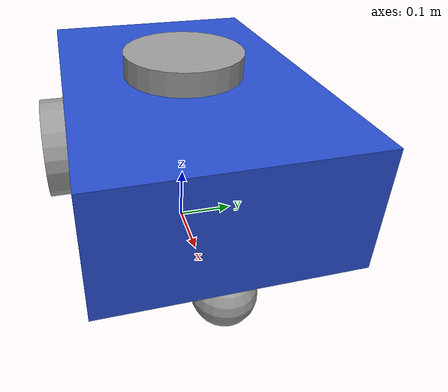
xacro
<?xml version="1.0"?>
<robot name="usenav" xmlns:xacro="http://www.ros.org/wiki/xacro">

  <xacro:property name="BASE_LENGTH" value="0.6" />
  <xacro:property name="BASE_WIDTH" value="0.4" />
  <xacro:property name="BASE_HEIGHT" value="0.2" />

  <xacro:property name="WHEEL_RADIUS" value="0.1" />
  <xacro:property name="WHEEL_LENGTH" value="0.05" />

  <xacro:property name="SCAN_RADIUS" value="0.1" />
  <xacro:property name="SCAN_LENGTH" value="0.04" />

  <xacro:property name="BASE_MASS" value="5.0" />
  <xacro:property name="WHEEL_MASS" value="1.0" />
  <xacro:property name="CASTER_MASS" value="0.5" />
  <xacro:property name="SCAN_MASS" value="0.2" />

  <xacro:macro name="wheel" params="name y_sign">
    <link name="${name}_wheel">
      <visual>
        <geometry>
          <cylinder radius="${WHEEL_RADIUS}" length="${WHEEL_LENGTH}" />
        </geometry>
        <origin xyz="0.0 0.0 0.0" rpy="0.0 0.0 0.0" />
        <material name="grey" />
      </visual>

      <collision>
        <geometry>
          <cylinder radius="${WHEEL_RADIUS}" length="${WHEEL_LENGTH}" />
        </geometry>
        <origin xyz="0.0 0.0 0.0" rpy="0.0 0.0 0.0" />
      </collision>

      <xacro:cylinder_inertia m="${WHEEL_MASS}" r="${INERTIA_MULTIPLY * WHEEL_RADIUS}"
        h="${INERTIA_MULTIPLY * WHEEL_LENGTH}"
        xyz="0.0 0.0 0.0" rpy="0.0 0.0 0.0" />

    </link>

    <joint name="${name}_joint" type="continuous">
      <parent link="base_link" />
      <child link="${name}_wheel" />
      <origin xyz="${-BASE_LENGTH/4} ${y_sign*(BASE_WIDTH + WHEEL_LENGTH) / 2.0} 0.0"
        rpy="${-pi/2.0} 0 0" />
      <axis xyz="0 0 1" />
    </joint>
  </xacro:macro>

  <link name="base_footprint" />

  <link name="base_link">
    <visual>
      <geometry>
        <box size="${BASE_LENGTH} ${BASE_WIDTH} ${BASE_HEIGHT} " />
      </geometry>
      <origin xyz="0 0 ${BASE_HEIGHT/2.0}" rpy="0 0 0" />
      <material name="blue" />
    </visual>

    <collision>
      <geometry>
        <box size="${BASE_LENGTH} ${BASE_WIDTH} ${BASE_HEIGHT} " />
      </geometry>
      <origin xyz="0 0 ${BASE_HEIGHT/2.0}" rpy="0 0 0" />
    </collision>

    <xacro:box_inertia m="${BASE_MASS}" l="${INERTIA_MULTIPLY * BASE_LENGTH}"
      w="${INERTIA_MULTIPLY * BASE_WIDTH}" h="${INERTIA_MULTIPLY * BASE_HEIGHT}"
      xyz="0 0 ${BASE_HEIGHT/2.0}" rpy="0 0 0" />

  </link>

  <joint name="base_joint" type="fixed">
    <parent link="base_footprint" />
    <child link="base_link" />
    <origin xyz="0.0 0.0 ${WHEEL_RADIUS}" rpy="0.0 0.0 0.0" />
    <axis xyz="0.0 1 0.0" rpy="0 0 0"/>
  </joint>

  <link name="base_scan">
    <visual>
      <geometry>
        <cylinder radius="${SCAN_RADIUS}" length="${SCAN_LENGTH}" />
      </geometry>
      <origin xyz="0 0 0" rpy="0 0 0" />
      <material name="grey" />
    </visual>

    <collision>
      <geometry>
        <cylinder radius="${SCAN_RADIUS}" length="${SCAN_LENGTH}" />
      </geometry>
      <origin xyz="0 0 0" rpy="0 0 0" />
    </collision>

    <xacro:cylinder_inertia m="${SCAN_MASS}" r="${INERTIA_MULTIPLY * SCAN_RADIUS}"
        h="${INERTIA_MULTIPLY * SCAN_LENGTH}"
        xyz="0.0 0.0 0.0" rpy="0.0 0.0 0.0" />
  </link>

  <joint name="base_scan_joint" type="fixed">
    <parent link="base_link" />
    <child link="base_scan" />
    <origin xyz="0 0 ${BASE_HEIGHT + SCAN_LENGTH/2.0}" rpy="0 0 0" />
  </joint>

  <xacro:wheel name="left" y_sign="1" />
  <xacro:wheel name="right" y_sign="-1" />

  <link name="caster_front">
    <visual>
      <geometry>
        <sphere radius="${WHEEL_RADIUS / 2.0}" />
      </geometry>
      <origin xyz="0.0 0.0 0" rpy="0.0 0.0 0.0" />
      <material name="grey" />
    </visual>

    <collision>
      <geometry>
        <sphere radius="${WHEEL_RADIUS / 2.0}" />
      </geometry>
      <origin xyz="0.0 0.0 0" rpy="0.0 0.0 0.0" />
    </collision>

    <xacro:sphere_inertia m="${CASTER_MASS}" r="${INERTIA_MULTIPLY * WHEEL_RADIUS / 2.0}"
      xyz="0.0 0.0 0"
      rpy="0.0 0.0 0.0" />

  </link>

  <joint name="caster_front_joint" type="fixed">
    <parent link="base_link" />
    <child link="caster_front" />
    <origin xyz="0.25 0 ${-WHEEL_RADIUS / 2.0}" />
  </joint>

  <link name="caster_rear">
    <visual>
      <geometry>
        <sphere radius="${WHEEL_RADIUS / 2.0}" />
      </geometry>
      <material name="grey" />
    </visual>

    <collision>
      <geometry>
        <sphere radius="${WHEEL_RADIUS / 2.0}" />
      </geometry>
    </collision>

    <xacro:sphere_inertia m="${CASTER_MASS}" r="${INERTIA_MULTIPLY * WHEEL_RADIUS / 2.0}"
      xyz="0.0 0.0 0"
      rpy="0.0 0.0 0.0" />
  </link>

  <joint name="caster_rear_joint" type="fixed">
    <parent link="base_link" />
    <child link="caster_rear" />
    <origin xyz="-0.25 0 ${-WHEEL_RADIUS / 2.0}" />
  </joint>

</robot>
